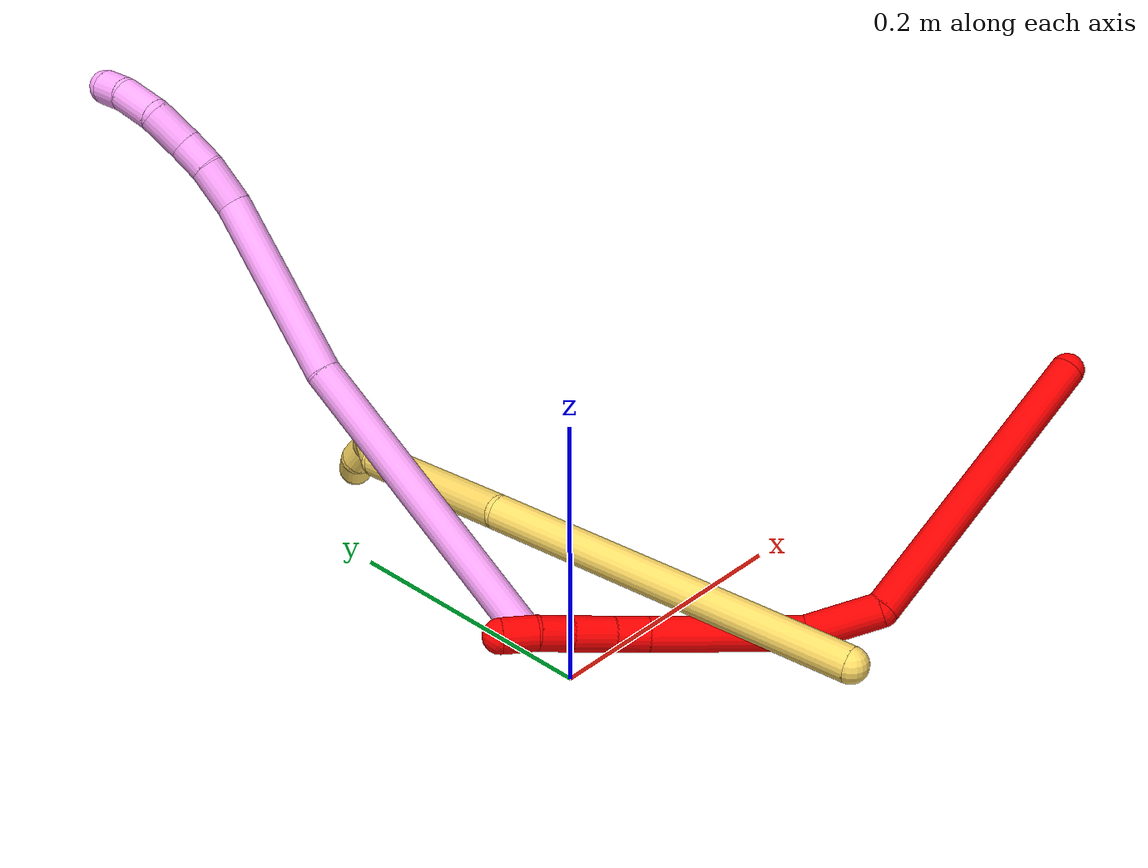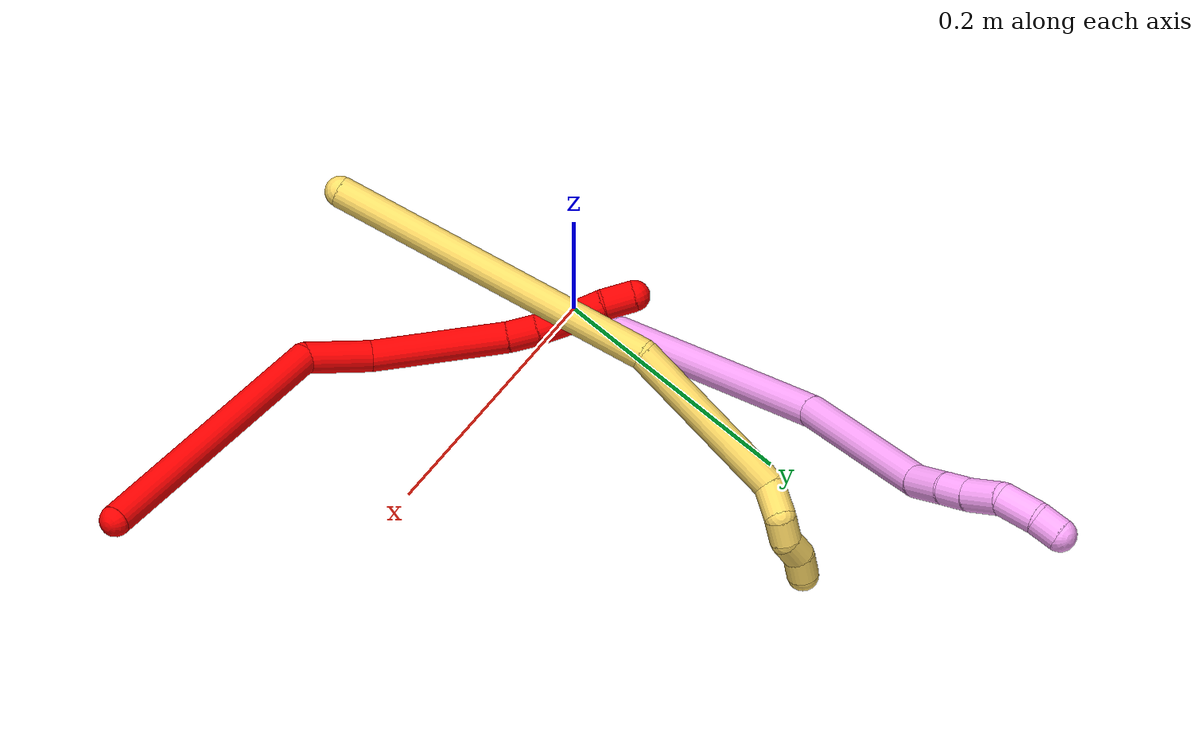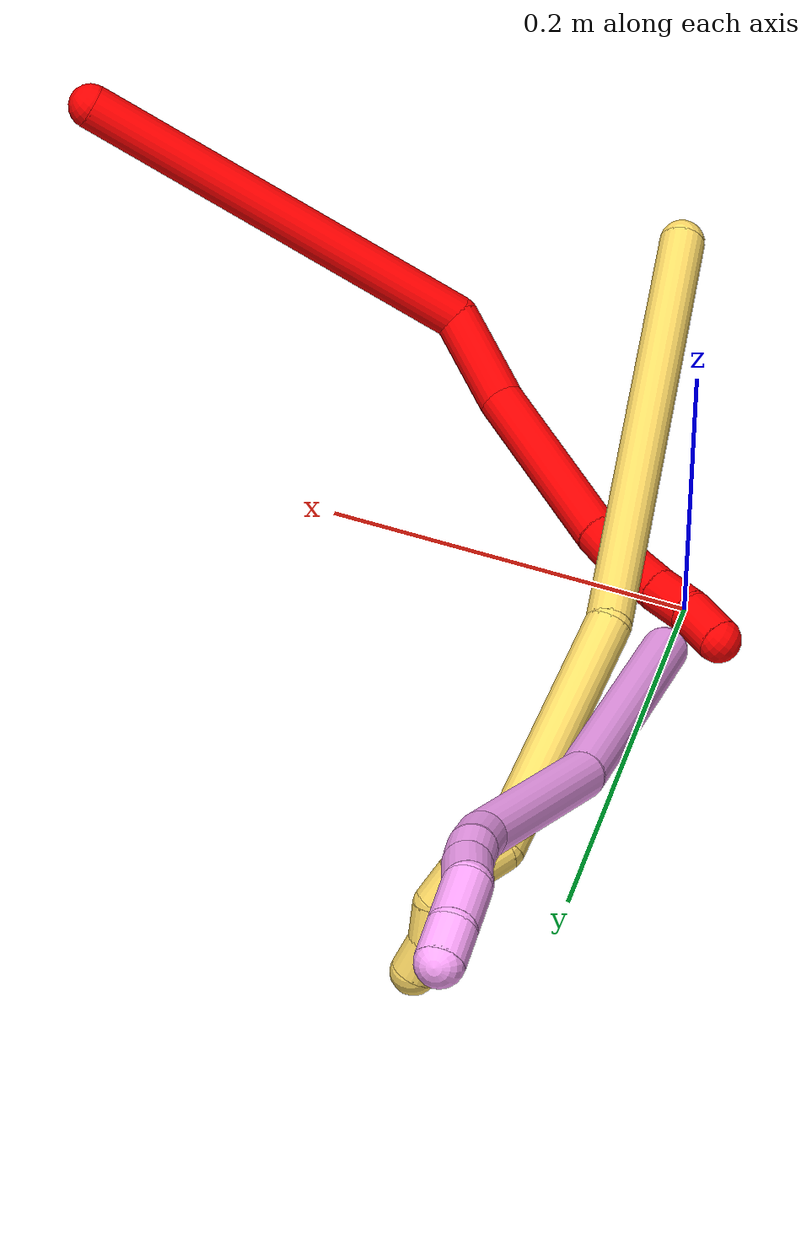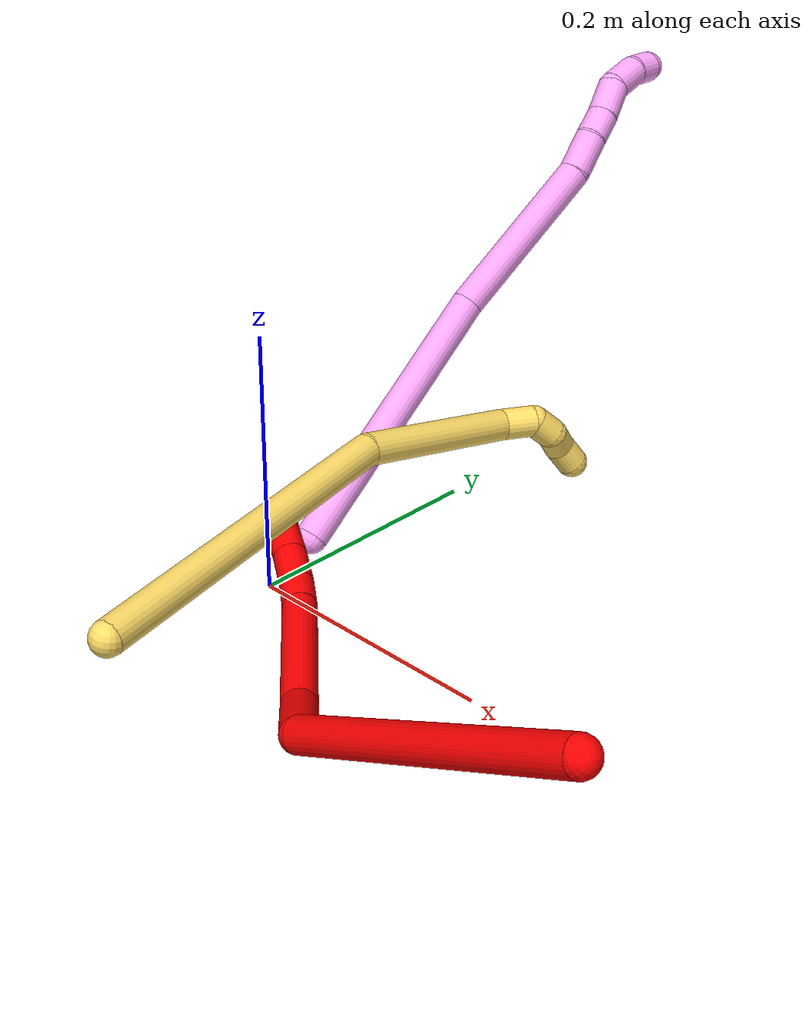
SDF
<sdf version="1.7">
 <world name="default">
  <model name="photoneo_s_sensor">
   <static>1</static>
   <pose>0 0 2 1.57079 1.57079 3.14159</pose>
   <link name="link">
    <inertial><mass>0.1</mass></inertial>
    <sensor name="sensor" type="depth">
     <update_rate>30</update_rate>
     <camera>
      <horizontal_fov>1.22</horizontal_fov>
      <image><width>1920</width><height>1200</height><format>B8G8R8</format></image>
      <clip><near>0.1</near><far>4</far></clip>
      <depth_camera><output>points</output></depth_camera>
     </camera>
     <plugin name="camera_plugin" filename="libgazebo_ros_depth_camera.so">
      <baseline>0.2</baseline>
      <alwaysOn>1</alwaysOn>
      <updateRate>0.0</updateRate>
      <cameraName>camera_ir</cameraName>
      <imageTopicName>/camera/color/image_raw</imageTopicName>
      <cameraInfoTopicName>/camera/color/camera_info</cameraInfoTopicName>
      <depthImageTopicName>/camera/depth/image_raw</depthImageTopicName>
      <depthImageCameraInfoTopicName>/camera/depth/camera_info</depthImageCameraInfoTopicName>
      <pointCloudTopicName>/camera/depth/points</pointCloudTopicName>
      <frameName>fr_optical</frameName>
      <pointCloudCutoff>0.1</pointCloudCutoff>
      <pointCloudCutoffMax>2.0</pointCloudCutoffMax>
      <distortionK1>0</distortionK1>
      <distortionK2>0</distortionK2>
      <distortionK3>0</distortionK3>
      <distortionT1>0</distortionT1>
      <distortionT2>0</distortionT2>
      <CxPrime>0</CxPrime>
      <Cx>0</Cx>
      <Cy>0</Cy>
      <focalLength>0</focalLength>
      <hackBaseline>0</hackBaseline>
     </plugin>
    </sensor>
   </link>
  </model>
  <model name="bin">
   <static>1</static>
   <link name="bottom">
    <collision name="collision-bottom">
     <pose>0 0 -0.01 0 -0 0</pose>
     <geometry><box><size>0.8 0.6 0.02</size></box></geometry>
     <surface>
      <friction><ode><mu>100</mu><mu2>100</mu2></ode></friction>
      <contact><collide_bitmask>65535</collide_bitmask></contact>
     </surface>
    </collision>
   </link>
   <link name="west_wall">
    <collision name="collision-west_wall">
     <pose>-0.41 0 0.1 0 -0 0</pose>
     <geometry><box><size>0.02 0.6 0.2</size></box></geometry>
     <surface>
      <friction><ode><mu>100</mu><mu2>100</mu2></ode></friction>
      <contact><collide_bitmask>65535</collide_bitmask></contact>
     </surface>
    </collision>
   </link>
   <link name="east_wall">
    <collision name="collision-east_wall">
     <pose>0.41 0 0.1 0 -0 0</pose>
     <geometry><box><size>0.02 0.6 0.2</size></box></geometry>
     <surface>
      <friction><ode><mu>100</mu><mu2>100</mu2></ode></friction>
      <contact><collide_bitmask>65535</collide_bitmask></contact>
     </surface>
    </collision>
   </link>
   <link name="south_wall">
    <collision name="collision-south_wall">
     <pose>0 -0.31 0.1 0 -0 0</pose>
     <geometry><box><size>0.8 0.02 0.2</size></box></geometry>
     <surface>
      <friction><ode><mu>100</mu><mu2>100</mu2></ode></friction>
      <contact><collide_bitmask>65535</collide_bitmask></contact>
     </surface>
    </collision>
   </link>
   <link name="north_wall">
    <collision name="collision-north_wall">
     <pose>0 0.31 0.1 0 -0 0</pose>
     <geometry><box><size>0.8 0.02 0.2</size></box></geometry>
     <surface>
      <friction><ode><mu>100</mu><mu2>100</mu2></ode></friction>
      <contact><collide_bitmask>65535</collide_bitmask></contact>
     </surface>
    </collision>
   </link>
  </model>
  <model name="2">
   <static>0</static>
   <link name="2">
    <collision name="collision-cylinder-e_1_1_4">
     <pose>-0.025797 -0.002825 -0.1136 3.11673 -0.223234 -2.92069</pose>
     <geometry><cylinder><radius>0.0125</radius><length>0.233054</length></cylinder></geometry>
     <surface>
      <friction><ode><mu>1.16</mu><mu2>1.16</mu2><slip1>0</slip1><slip2>0</slip2></ode></friction>
      <contact><ode><kp>1e+06</kp><kd>1</kd><max_vel>0</max_vel><min_depth>0.001</min_depth></ode></contact>
     </surface>
    </collision>
    <visual name="visual-cylinder-e_1_1_4">
     <pose>-0.025797 -0.002825 -0.1136 3.11673 -0.223234 -2.92069</pose>
     <geometry><cylinder><radius>0.0125</radius><length>0.233054</length></cylinder></geometry>
     <material><ambient>1 0 0 1</ambient></material>
    </visual>
    <collision name="collision-cylinder-e_2_4_5">
     <pose>-0.05864 0.011151 -0.247367 -2.44698 -0.262236 0.698746</pose>
     <geometry><cylinder><radius>0.0125</radius><length>0.054353</length></cylinder></geometry>
     <surface>
      <friction><ode><mu>1.16</mu><mu2>1.16</mu2><slip1>0</slip1><slip2>0</slip2></ode></friction>
      <contact><ode><kp>1e+06</kp><kd>1</kd><max_vel>0</max_vel><min_depth>0.001</min_depth></ode></contact>
     </surface>
    </collision>
    <visual name="visual-cylinder-e_2_4_5">
     <pose>-0.05864 0.011151 -0.247367 -2.44698 -0.262236 0.698746</pose>
     <geometry><cylinder><radius>0.0125</radius><length>0.054353</length></cylinder></geometry>
     <material><ambient>1 0 0 1</ambient></material>
    </visual>
    <collision name="collision-cylinder-e_3_5_6">
     <pose>-0.095772 0.061675 -0.297308 -2.2941 -0.58948 1.18478</pose>
     <geometry><cylinder><radius>0.0125</radius><length>0.10824</length></cylinder></geometry>
     <surface>
      <friction><ode><mu>1.16</mu><mu2>1.16</mu2><slip1>0</slip1><slip2>0</slip2></ode></friction>
      <contact><ode><kp>1e+06</kp><kd>1</kd><max_vel>0</max_vel><min_depth>0.001</min_depth></ode></contact>
     </surface>
    </collision>
    <visual name="visual-cylinder-e_3_5_6">
     <pose>-0.095772 0.061675 -0.297308 -2.2941 -0.58948 1.18478</pose>
     <geometry><cylinder><radius>0.0125</radius><length>0.10824</length></cylinder></geometry>
     <material><ambient>1 0 0 1</ambient></material>
    </visual>
    <collision name="collision-cylinder-e_4_6_7">
     <pose>-0.133694 0.10203 -0.333666 -2.35244 -0.697731 1.43597</pose>
     <geometry><cylinder><radius>0.0125</radius><length>0.024391</length></cylinder></geometry>
     <surface>
      <friction><ode><mu>1.16</mu><mu2>1.16</mu2><slip1>0</slip1><slip2>0</slip2></ode></friction>
      <contact><ode><kp>1e+06</kp><kd>1</kd><max_vel>0</max_vel><min_depth>0.001</min_depth></ode></contact>
     </surface>
    </collision>
    <visual name="visual-cylinder-e_4_6_7">
     <pose>-0.133694 0.10203 -0.333666 -2.35244 -0.697731 1.43597</pose>
     <geometry><cylinder><radius>0.0125</radius><length>0.024391</length></cylinder></geometry>
     <material><ambient>1 0 0 1</ambient></material>
    </visual>
    <collision name="collision-cylinder-e_5_7_8">
     <pose>-0.15235 0.115889 -0.348442 -2.41887 -0.78063 1.65554</pose>
     <geometry><cylinder><radius>0.0125</radius><length>0.030751</length></cylinder></geometry>
     <surface>
      <friction><ode><mu>1.16</mu><mu2>1.16</mu2><slip1>0</slip1><slip2>0</slip2></ode></friction>
      <contact><ode><kp>1e+06</kp><kd>1</kd><max_vel>0</max_vel><min_depth>0.001</min_depth></ode></contact>
     </surface>
    </collision>
    <visual name="visual-cylinder-e_5_7_8">
     <pose>-0.15235 0.115889 -0.348442 -2.41887 -0.78063 1.65554</pose>
     <geometry><cylinder><radius>0.0125</radius><length>0.030751</length></cylinder></geometry>
     <material><ambient>1 0 0 1</ambient></material>
    </visual>
    <collision name="collision-cylinder-e_6_8_9">
     <pose>-0.17227 0.128184 -0.362941 -2.46439 -0.844065 1.8114</pose>
     <geometry><cylinder><radius>0.0125</radius><length>0.024354</length></cylinder></geometry>
     <surface>
      <friction><ode><mu>1.16</mu><mu2>1.16</mu2><slip1>0</slip1><slip2>0</slip2></ode></friction>
      <contact><ode><kp>1e+06</kp><kd>1</kd><max_vel>0</max_vel><min_depth>0.001</min_depth></ode></contact>
     </surface>
    </collision>
    <visual name="visual-cylinder-e_6_8_9">
     <pose>-0.17227 0.128184 -0.362941 -2.46439 -0.844065 1.8114</pose>
     <geometry><cylinder><radius>0.0125</radius><length>0.024354</length></cylinder></geometry>
     <material><ambient>1 0 0 1</ambient></material>
    </visual>
    <collision name="collision-cylinder-e_7_9_2">
     <pose>-0.189029 0.139491 -0.37679 -2.45068 -0.663877 1.52766</pose>
     <geometry><cylinder><radius>0.0125</radius><length>0.024857</length></cylinder></geometry>
     <surface>
      <friction><ode><mu>1.16</mu><mu2>1.16</mu2><slip1>0</slip1><slip2>0</slip2></ode></friction>
      <contact><ode><kp>1e+06</kp><kd>1</kd><max_vel>0</max_vel><min_depth>0.001</min_depth></ode></contact>
     </surface>
    </collision>
    <visual name="visual-cylinder-e_7_9_2">
     <pose>-0.189029 0.139491 -0.37679 -2.45068 -0.663877 1.52766</pose>
     <geometry><cylinder><radius>0.0125</radius><length>0.024857</length></cylinder></geometry>
     <material><ambient>1 0 0 1</ambient></material>
    </visual>
    <collision name="collision-sphere-2">
     <pose>-0.196687 0.145729 -0.384334 0 -0 0</pose>
     <geometry><sphere><radius>0.0125</radius></sphere></geometry>
     <surface>
      <friction><ode><mu>1.16</mu><mu2>1.16</mu2><slip1>0</slip1><slip2>0</slip2></ode></friction>
      <contact><ode><kp>1e+06</kp><kd>1</kd><max_vel>0</max_vel><min_depth>0.001</min_depth></ode></contact>
     </surface>
    </collision>
    <visual name="visual-sphere-2">
     <pose>-0.196687 0.145729 -0.384334 0 -0 0</pose>
     <geometry><sphere><radius>0.0125</radius></sphere></geometry>
     <material><ambient>1 0 0 1</ambient></material>
    </visual>
    <collision name="collision-sphere-9">
     <pose>-0.181371 0.133253 -0.369246 0 -0 0</pose>
     <geometry><sphere><radius>0.0125</radius></sphere></geometry>
     <surface>
      <friction><ode><mu>1.16</mu><mu2>1.16</mu2><slip1>0</slip1><slip2>0</slip2></ode></friction>
      <contact><ode><kp>1e+06</kp><kd>1</kd><max_vel>0</max_vel><min_depth>0.001</min_depth></ode></contact>
     </surface>
    </collision>
    <visual name="visual-sphere-9">
     <pose>-0.181371 0.133253 -0.369246 0 -0 0</pose>
     <geometry><sphere><radius>0.0125</radius></sphere></geometry>
     <material><ambient>1 0 0 1</ambient></material>
    </visual>
    <collision name="collision-sphere-4">
     <pose>-0.051594 -0.005649 -0.227201 0 -0 0</pose>
     <geometry><sphere><radius>0.0125</radius></sphere></geometry>
     <surface>
      <friction><ode><mu>1.16</mu><mu2>1.16</mu2><slip1>0</slip1><slip2>0</slip2></ode></friction>
      <contact><ode><kp>1e+06</kp><kd>1</kd><max_vel>0</max_vel><min_depth>0.001</min_depth></ode></contact>
     </surface>
    </collision>
    <visual name="visual-sphere-4">
     <pose>-0.051594 -0.005649 -0.227201 0 -0 0</pose>
     <geometry><sphere><radius>0.0125</radius></sphere></geometry>
     <material><ambient>1 0 0 1</ambient></material>
    </visual>
    <collision name="collision-sphere-1">
     <geometry><sphere><radius>0.0125</radius></sphere></geometry>
     <surface>
      <friction><ode><mu>1.16</mu><mu2>1.16</mu2><slip1>0</slip1><slip2>0</slip2></ode></friction>
      <contact><ode><kp>1e+06</kp><kd>1</kd><max_vel>0</max_vel><min_depth>0.001</min_depth></ode></contact>
     </surface>
    </collision>
    <visual name="visual-sphere-1">
     <geometry><sphere><radius>0.0125</radius></sphere></geometry>
     <material><ambient>1 0 0 1</ambient></material>
    </visual>
    <collision name="collision-sphere-8">
     <pose>-0.16317 0.123114 -0.356635 0 -0 0</pose>
     <geometry><sphere><radius>0.0125</radius></sphere></geometry>
     <surface>
      <friction><ode><mu>1.16</mu><mu2>1.16</mu2><slip1>0</slip1><slip2>0</slip2></ode></friction>
      <contact><ode><kp>1e+06</kp><kd>1</kd><max_vel>0</max_vel><min_depth>0.001</min_depth></ode></contact>
     </surface>
    </collision>
    <visual name="visual-sphere-8">
     <pose>-0.16317 0.123114 -0.356635 0 -0 0</pose>
     <geometry><sphere><radius>0.0125</radius></sphere></geometry>
     <material><ambient>1 0 0 1</ambient></material>
    </visual>
    <collision name="collision-sphere-5">
     <pose>-0.065685 0.027952 -0.267533 0 -0 0</pose>
     <geometry><sphere><radius>0.0125</radius></sphere></geometry>
     <surface>
      <friction><ode><mu>1.16</mu><mu2>1.16</mu2><slip1>0</slip1><slip2>0</slip2></ode></friction>
      <contact><ode><kp>1e+06</kp><kd>1</kd><max_vel>0</max_vel><min_depth>0.001</min_depth></ode></contact>
     </surface>
    </collision>
    <visual name="visual-sphere-5">
     <pose>-0.065685 0.027952 -0.267533 0 -0 0</pose>
     <geometry><sphere><radius>0.0125</radius></sphere></geometry>
     <material><ambient>1 0 0 1</ambient></material>
    </visual>
    <collision name="collision-sphere-6">
     <pose>-0.125859 0.095397 -0.327083 0 -0 0</pose>
     <geometry><sphere><radius>0.0125</radius></sphere></geometry>
     <surface>
      <friction><ode><mu>1.16</mu><mu2>1.16</mu2><slip1>0</slip1><slip2>0</slip2></ode></friction>
      <contact><ode><kp>1e+06</kp><kd>1</kd><max_vel>0</max_vel><min_depth>0.001</min_depth></ode></contact>
     </surface>
    </collision>
    <visual name="visual-sphere-6">
     <pose>-0.125859 0.095397 -0.327083 0 -0 0</pose>
     <geometry><sphere><radius>0.0125</radius></sphere></geometry>
     <material><ambient>1 0 0 1</ambient></material>
    </visual>
    <collision name="collision-sphere-7">
     <pose>-0.141529 0.108663 -0.340249 0 -0 0</pose>
     <geometry><sphere><radius>0.0125</radius></sphere></geometry>
     <surface>
      <friction><ode><mu>1.16</mu><mu2>1.16</mu2><slip1>0</slip1><slip2>0</slip2></ode></friction>
      <contact><ode><kp>1e+06</kp><kd>1</kd><max_vel>0</max_vel><min_depth>0.001</min_depth></ode></contact>
     </surface>
    </collision>
    <visual name="visual-sphere-7">
     <pose>-0.141529 0.108663 -0.340249 0 -0 0</pose>
     <geometry><sphere><radius>0.0125</radius></sphere></geometry>
     <material><ambient>1 0 0 1</ambient></material>
    </visual>
    <inertial>
     <pose>-0.072811 0.03853 -0.218318 0 -0 0</pose>
     <mass>0.5</mass>
     <inertia>
      <ixx>-0.001108</ixx>
      <ixy>0</ixy>
      <ixz>0</ixz>
      <iyy>0.000937</iyy>
      <iyz>0</iyz>
      <izz>0.00022</izz>
     </inertia>
    </inertial>
   </link>
   <pose>0.384557 -0.127788 0.128634 -0.133982 0.898879 -0.167885</pose>
  </model>
  <model name="4">
   <static>0</static>
   <link name="4">
    <collision name="collision-cylinder-e_1_1_4">
     <pose>0.006843 0.007915 0.111724 -0.07073 0.061018 -0.002159</pose>
     <geometry><cylinder><radius>0.0125</radius><length>0.224425</length></cylinder></geometry>
     <surface>
      <friction><ode><mu>1.16</mu><mu2>1.16</mu2><slip1>0</slip1><slip2>0</slip2></ode></friction>
      <contact><ode><kp>1e+06</kp><kd>1</kd><max_vel>0</max_vel><min_depth>0.001</min_depth></ode></contact>
     </surface>
    </collision>
    <visual name="visual-cylinder-e_1_1_4">
     <pose>0.006843 0.007915 0.111724 -0.07073 0.061018 -0.002159</pose>
     <geometry><cylinder><radius>0.0125</radius><length>0.224425</length></cylinder></geometry>
     <material><ambient>1 0.65098 0.996078 1</ambient></material>
    </visual>
    <collision name="collision-cylinder-e_2_4_5">
     <pose>0.022151 0.009694 0.292078 0.089188 0.122245 0.005462</pose>
     <geometry><cylinder><radius>0.0125</radius><length>0.138846</length></cylinder></geometry>
     <surface>
      <friction><ode><mu>1.16</mu><mu2>1.16</mu2><slip1>0</slip1><slip2>0</slip2></ode></friction>
      <contact><ode><kp>1e+06</kp><kd>1</kd><max_vel>0</max_vel><min_depth>0.001</min_depth></ode></contact>
     </surface>
    </collision>
    <visual name="visual-cylinder-e_2_4_5">
     <pose>0.022151 0.009694 0.292078 0.089188 0.122245 0.005462</pose>
     <geometry><cylinder><radius>0.0125</radius><length>0.138846</length></cylinder></geometry>
     <material><ambient>1 0.65098 0.996078 1</ambient></material>
    </visual>
    <collision name="collision-cylinder-e_3_5_6">
     <pose>0.029287 0.003927 0.377102 -0.022587 -0.080894 0.000914</pose>
     <geometry><cylinder><radius>0.0125</radius><length>0.032902</length></cylinder></geometry>
     <surface>
      <friction><ode><mu>1.16</mu><mu2>1.16</mu2><slip1>0</slip1><slip2>0</slip2></ode></friction>
      <contact><ode><kp>1e+06</kp><kd>1</kd><max_vel>0</max_vel><min_depth>0.001</min_depth></ode></contact>
     </surface>
    </collision>
    <visual name="visual-cylinder-e_3_5_6">
     <pose>0.029287 0.003927 0.377102 -0.022587 -0.080894 0.000914</pose>
     <geometry><cylinder><radius>0.0125</radius><length>0.032902</length></cylinder></geometry>
     <material><ambient>1 0.65098 0.996078 1</ambient></material>
    </visual>
    <collision name="collision-cylinder-e_4_6_7">
     <pose>0.027873 0.006165 0.404778 -0.164087 -0.007401 0.000609</pose>
     <geometry><cylinder><radius>0.0125</radius><length>0.022875</length></cylinder></geometry>
     <surface>
      <friction><ode><mu>1.16</mu><mu2>1.16</mu2><slip1>0</slip1><slip2>0</slip2></ode></friction>
      <contact><ode><kp>1e+06</kp><kd>1</kd><max_vel>0</max_vel><min_depth>0.001</min_depth></ode></contact>
     </surface>
    </collision>
    <visual name="visual-cylinder-e_4_6_7">
     <pose>0.027873 0.006165 0.404778 -0.164087 -0.007401 0.000609</pose>
     <geometry><cylinder><radius>0.0125</radius><length>0.022875</length></cylinder></geometry>
     <material><ambient>1 0.65098 0.996078 1</ambient></material>
    </visual>
    <collision name="collision-cylinder-e_5_7_8">
     <pose>0.026167 0.011179 0.430801 -0.21029 -0.107192 0.011323</pose>
     <geometry><cylinder><radius>0.0125</radius><length>0.030316</length></cylinder></geometry>
     <surface>
      <friction><ode><mu>1.16</mu><mu2>1.16</mu2><slip1>0</slip1><slip2>0</slip2></ode></friction>
      <contact><ode><kp>1e+06</kp><kd>1</kd><max_vel>0</max_vel><min_depth>0.001</min_depth></ode></contact>
     </surface>
    </collision>
    <visual name="visual-cylinder-e_5_7_8">
     <pose>0.026167 0.011179 0.430801 -0.21029 -0.107192 0.011323</pose>
     <geometry><cylinder><radius>0.0125</radius><length>0.030316</length></cylinder></geometry>
     <material><ambient>1 0.65098 0.996078 1</ambient></material>
    </visual>
    <collision name="collision-cylinder-e_6_8_9">
     <pose>0.029478 0.019215 0.458999 -0.348471 0.331747 -0.058919</pose>
     <geometry><cylinder><radius>0.0125</radius><length>0.030292</length></cylinder></geometry>
     <surface>
      <friction><ode><mu>1.16</mu><mu2>1.16</mu2><slip1>0</slip1><slip2>0</slip2></ode></friction>
      <contact><ode><kp>1e+06</kp><kd>1</kd><max_vel>0</max_vel><min_depth>0.001</min_depth></ode></contact>
     </surface>
    </collision>
    <visual name="visual-cylinder-e_6_8_9">
     <pose>0.029478 0.019215 0.458999 -0.348471 0.331747 -0.058919</pose>
     <geometry><cylinder><radius>0.0125</radius><length>0.030292</length></cylinder></geometry>
     <material><ambient>1 0.65098 0.996078 1</ambient></material>
    </visual>
    <collision name="collision-cylinder-e_7_9_2">
     <pose>0.039805 0.028361 0.47996 -0.516067 0.558879 -0.151172</pose>
     <geometry><cylinder><radius>0.0125</radius><length>0.020345</length></cylinder></geometry>
     <surface>
      <friction><ode><mu>1.16</mu><mu2>1.16</mu2><slip1>0</slip1><slip2>0</slip2></ode></friction>
      <contact><ode><kp>1e+06</kp><kd>1</kd><max_vel>0</max_vel><min_depth>0.001</min_depth></ode></contact>
     </surface>
    </collision>
    <visual name="visual-cylinder-e_7_9_2">
     <pose>0.039805 0.028361 0.47996 -0.516067 0.558879 -0.151172</pose>
     <geometry><cylinder><radius>0.0125</radius><length>0.020345</length></cylinder></geometry>
     <material><ambient>1 0.65098 0.996078 1</ambient></material>
    </visual>
    <collision name="collision-sphere-2">
     <pose>0.045199 0.032617 0.487462 0 -0 0</pose>
     <geometry><sphere><radius>0.0125</radius></sphere></geometry>
     <surface>
      <friction><ode><mu>1.16</mu><mu2>1.16</mu2><slip1>0</slip1><slip2>0</slip2></ode></friction>
      <contact><ode><kp>1e+06</kp><kd>1</kd><max_vel>0</max_vel><min_depth>0.001</min_depth></ode></contact>
     </surface>
    </collision>
    <visual name="visual-sphere-2">
     <pose>0.045199 0.032617 0.487462 0 -0 0</pose>
     <geometry><sphere><radius>0.0125</radius></sphere></geometry>
     <material><ambient>1 0.65098 0.996078 1</ambient></material>
    </visual>
    <collision name="collision-sphere-9">
     <pose>0.034411 0.024105 0.472459 0 -0 0</pose>
     <geometry><sphere><radius>0.0125</radius></sphere></geometry>
     <surface>
      <friction><ode><mu>1.16</mu><mu2>1.16</mu2><slip1>0</slip1><slip2>0</slip2></ode></friction>
      <contact><ode><kp>1e+06</kp><kd>1</kd><max_vel>0</max_vel><min_depth>0.001</min_depth></ode></contact>
     </surface>
    </collision>
    <visual name="visual-sphere-9">
     <pose>0.034411 0.024105 0.472459 0 -0 0</pose>
     <geometry><sphere><radius>0.0125</radius></sphere></geometry>
     <material><ambient>1 0.65098 0.996078 1</ambient></material>
    </visual>
    <collision name="collision-sphere-4">
     <pose>0.013685 0.015831 0.223447 0 -0 0</pose>
     <geometry><sphere><radius>0.0125</radius></sphere></geometry>
     <surface>
      <friction><ode><mu>1.16</mu><mu2>1.16</mu2><slip1>0</slip1><slip2>0</slip2></ode></friction>
      <contact><ode><kp>1e+06</kp><kd>1</kd><max_vel>0</max_vel><min_depth>0.001</min_depth></ode></contact>
     </surface>
    </collision>
    <visual name="visual-sphere-4">
     <pose>0.013685 0.015831 0.223447 0 -0 0</pose>
     <geometry><sphere><radius>0.0125</radius></sphere></geometry>
     <material><ambient>1 0.65098 0.996078 1</ambient></material>
    </visual>
    <collision name="collision-sphere-1">
     <geometry><sphere><radius>0.0125</radius></sphere></geometry>
     <surface>
      <friction><ode><mu>1.16</mu><mu2>1.16</mu2><slip1>0</slip1><slip2>0</slip2></ode></friction>
      <contact><ode><kp>1e+06</kp><kd>1</kd><max_vel>0</max_vel><min_depth>0.001</min_depth></ode></contact>
     </surface>
    </collision>
    <visual name="visual-sphere-1">
     <geometry><sphere><radius>0.0125</radius></sphere></geometry>
     <material><ambient>1 0.65098 0.996078 1</ambient></material>
    </visual>
    <collision name="collision-sphere-8">
     <pose>0.024545 0.014325 0.44554 0 -0 0</pose>
     <geometry><sphere><radius>0.0125</radius></sphere></geometry>
     <surface>
      <friction><ode><mu>1.16</mu><mu2>1.16</mu2><slip1>0</slip1><slip2>0</slip2></ode></friction>
      <contact><ode><kp>1e+06</kp><kd>1</kd><max_vel>0</max_vel><min_depth>0.001</min_depth></ode></contact>
     </surface>
    </collision>
    <visual name="visual-sphere-8">
     <pose>0.024545 0.014325 0.44554 0 -0 0</pose>
     <geometry><sphere><radius>0.0125</radius></sphere></geometry>
     <material><ambient>1 0.65098 0.996078 1</ambient></material>
    </visual>
    <collision name="collision-sphere-5">
     <pose>0.030616 0.003556 0.360709 0 -0 0</pose>
     <geometry><sphere><radius>0.0125</radius></sphere></geometry>
     <surface>
      <friction><ode><mu>1.16</mu><mu2>1.16</mu2><slip1>0</slip1><slip2>0</slip2></ode></friction>
      <contact><ode><kp>1e+06</kp><kd>1</kd><max_vel>0</max_vel><min_depth>0.001</min_depth></ode></contact>
     </surface>
    </collision>
    <visual name="visual-sphere-5">
     <pose>0.030616 0.003556 0.360709 0 -0 0</pose>
     <geometry><sphere><radius>0.0125</radius></sphere></geometry>
     <material><ambient>1 0.65098 0.996078 1</ambient></material>
    </visual>
    <collision name="collision-sphere-6">
     <pose>0.027958 0.004297 0.393495 0 -0 0</pose>
     <geometry><sphere><radius>0.0125</radius></sphere></geometry>
     <surface>
      <friction><ode><mu>1.16</mu><mu2>1.16</mu2><slip1>0</slip1><slip2>0</slip2></ode></friction>
      <contact><ode><kp>1e+06</kp><kd>1</kd><max_vel>0</max_vel><min_depth>0.001</min_depth></ode></contact>
     </surface>
    </collision>
    <visual name="visual-sphere-6">
     <pose>0.027958 0.004297 0.393495 0 -0 0</pose>
     <geometry><sphere><radius>0.0125</radius></sphere></geometry>
     <material><ambient>1 0.65098 0.996078 1</ambient></material>
    </visual>
    <collision name="collision-sphere-7">
     <pose>0.027788 0.008033 0.416062 0 -0 0</pose>
     <geometry><sphere><radius>0.0125</radius></sphere></geometry>
     <surface>
      <friction><ode><mu>1.16</mu><mu2>1.16</mu2><slip1>0</slip1><slip2>0</slip2></ode></friction>
      <contact><ode><kp>1e+06</kp><kd>1</kd><max_vel>0</max_vel><min_depth>0.001</min_depth></ode></contact>
     </surface>
    </collision>
    <visual name="visual-sphere-7">
     <pose>0.027788 0.008033 0.416062 0 -0 0</pose>
     <geometry><sphere><radius>0.0125</radius></sphere></geometry>
     <material><ambient>1 0.65098 0.996078 1</ambient></material>
    </visual>
    <inertial>
     <pose>0.017417 0.009781 0.248045 0 -0 0</pose>
     <mass>0.5</mass>
     <inertia>
      <ixx>0.001192</ixx>
      <ixy>0</ixy>
      <ixz>0</ixz>
      <iyy>0.001192</iyy>
      <iyz>0</iyz>
      <izz>-9.9e-05</izz>
     </inertia>
    </inertial>
   </link>
   <pose>-0.002311 0.044541 0.021962 -0.606549 0.628586 0.734497</pose>
  </model>
  <model name="5">
   <static>0</static>
   <link name="5">
    <collision name="collision-cylinder-e_1_1_4">
     <pose>-0.013938 0.133941 0.022238 -1.40627 -0.102296 0.086734</pose>
     <geometry><cylinder><radius>0.0125</radius><length>0.272976</length></cylinder></geometry>
     <surface>
      <friction><ode><mu>1.16</mu><mu2>1.16</mu2><slip1>0</slip1><slip2>0</slip2></ode></friction>
      <contact><ode><kp>1e+06</kp><kd>1</kd><max_vel>0</max_vel><min_depth>0.001</min_depth></ode></contact>
     </surface>
    </collision>
    <visual name="visual-cylinder-e_1_1_4">
     <pose>-0.013938 0.133941 0.022238 -1.40627 -0.102296 0.086734</pose>
     <geometry><cylinder><radius>0.0125</radius><length>0.272976</length></cylinder></geometry>
     <material><ambient>1 0.858824 0.4 1</ambient></material>
    </visual>
    <collision name="collision-cylinder-e_2_4_5">
     <pose>-0.015565 0.336321 0.042293 -1.60268 0.177883 -0.183615</pose>
     <geometry><cylinder><radius>0.0125</radius><length>0.139143</length></cylinder></geometry>
     <surface>
      <friction><ode><mu>1.16</mu><mu2>1.16</mu2><slip1>0</slip1><slip2>0</slip2></ode></friction>
      <contact><ode><kp>1e+06</kp><kd>1</kd><max_vel>0</max_vel><min_depth>0.001</min_depth></ode></contact>
     </surface>
    </collision>
    <visual name="visual-cylinder-e_2_4_5">
     <pose>-0.015565 0.336321 0.042293 -1.60268 0.177883 -0.183615</pose>
     <geometry><cylinder><radius>0.0125</radius><length>0.139143</length></cylinder></geometry>
     <material><ambient>1 0.858824 0.4 1</ambient></material>
    </visual>
    <collision name="collision-cylinder-e_3_5_6">
     <pose>0.00487 0.415451 0.042634 -1.33903 0.636822 -0.5104</pose>
     <geometry><cylinder><radius>0.0125</radius><length>0.027326</length></cylinder></geometry>
     <surface>
      <friction><ode><mu>1.16</mu><mu2>1.16</mu2><slip1>0</slip1><slip2>0</slip2></ode></friction>
      <contact><ode><kp>1e+06</kp><kd>1</kd><max_vel>0</max_vel><min_depth>0.001</min_depth></ode></contact>
     </surface>
    </collision>
    <visual name="visual-cylinder-e_3_5_6">
     <pose>0.00487 0.415451 0.042634 -1.33903 0.636822 -0.5104</pose>
     <geometry><cylinder><radius>0.0125</radius><length>0.027326</length></cylinder></geometry>
     <material><ambient>1 0.858824 0.4 1</ambient></material>
    </visual>
    <collision name="collision-cylinder-e_4_6_7">
     <pose>0.018187 0.432986 0.039879 -2.22776 0.541111 -1.02733</pose>
     <geometry><cylinder><radius>0.0125</radius><length>0.020164</length></cylinder></geometry>
     <surface>
      <friction><ode><mu>1.16</mu><mu2>1.16</mu2><slip1>0</slip1><slip2>0</slip2></ode></friction>
      <contact><ode><kp>1e+06</kp><kd>1</kd><max_vel>0</max_vel><min_depth>0.001</min_depth></ode></contact>
     </surface>
    </collision>
    <visual name="visual-cylinder-e_4_6_7">
     <pose>0.018187 0.432986 0.039879 -2.22776 0.541111 -1.02733</pose>
     <geometry><cylinder><radius>0.0125</radius><length>0.020164</length></cylinder></geometry>
     <material><ambient>1 0.858824 0.4 1</ambient></material>
    </visual>
    <collision name="collision-cylinder-e_5_7_8">
     <pose>0.023966 0.446889 0.027327 -2.37115 0.057719 -0.142149</pose>
     <geometry><cylinder><radius>0.0125</radius><length>0.020309</length></cylinder></geometry>
     <surface>
      <friction><ode><mu>1.16</mu><mu2>1.16</mu2><slip1>0</slip1><slip2>0</slip2></ode></friction>
      <contact><ode><kp>1e+06</kp><kd>1</kd><max_vel>0</max_vel><min_depth>0.001</min_depth></ode></contact>
     </surface>
    </collision>
    <visual name="visual-cylinder-e_5_7_8">
     <pose>0.023966 0.446889 0.027327 -2.37115 0.057719 -0.142149</pose>
     <geometry><cylinder><radius>0.0125</radius><length>0.020309</length></cylinder></geometry>
     <material><ambient>1 0.858824 0.4 1</ambient></material>
    </visual>
    <collision name="collision-cylinder-e_6_8_2">
     <pose>0.028905 0.459708 0.013073 -2.45167 0.448427 -1.13102</pose>
     <geometry><cylinder><radius>0.0125</radius><length>0.020081</length></cylinder></geometry>
     <surface>
      <friction><ode><mu>1.16</mu><mu2>1.16</mu2><slip1>0</slip1><slip2>0</slip2></ode></friction>
      <contact><ode><kp>1e+06</kp><kd>1</kd><max_vel>0</max_vel><min_depth>0.001</min_depth></ode></contact>
     </surface>
    </collision>
    <visual name="visual-cylinder-e_6_8_2">
     <pose>0.028905 0.459708 0.013073 -2.45167 0.448427 -1.13102</pose>
     <geometry><cylinder><radius>0.0125</radius><length>0.020081</length></cylinder></geometry>
     <material><ambient>1 0.858824 0.4 1</ambient></material>
    </visual>
    <collision name="collision-sphere-2">
     <pose>0.033258 0.465467 0.006094 0 -0 0</pose>
     <geometry><sphere><radius>0.0125</radius></sphere></geometry>
     <surface>
      <friction><ode><mu>1.16</mu><mu2>1.16</mu2><slip1>0</slip1><slip2>0</slip2></ode></friction>
      <contact><ode><kp>1e+06</kp><kd>1</kd><max_vel>0</max_vel><min_depth>0.001</min_depth></ode></contact>
     </surface>
    </collision>
    <visual name="visual-sphere-2">
     <pose>0.033258 0.465467 0.006094 0 -0 0</pose>
     <geometry><sphere><radius>0.0125</radius></sphere></geometry>
     <material><ambient>1 0.858824 0.4 1</ambient></material>
    </visual>
    <collision name="collision-sphere-4">
     <pose>-0.027876 0.267882 0.044476 0 -0 0</pose>
     <geometry><sphere><radius>0.0125</radius></sphere></geometry>
     <surface>
      <friction><ode><mu>1.16</mu><mu2>1.16</mu2><slip1>0</slip1><slip2>0</slip2></ode></friction>
      <contact><ode><kp>1e+06</kp><kd>1</kd><max_vel>0</max_vel><min_depth>0.001</min_depth></ode></contact>
     </surface>
    </collision>
    <visual name="visual-sphere-4">
     <pose>-0.027876 0.267882 0.044476 0 -0 0</pose>
     <geometry><sphere><radius>0.0125</radius></sphere></geometry>
     <material><ambient>1 0.858824 0.4 1</ambient></material>
    </visual>
    <collision name="collision-sphere-1">
     <geometry><sphere><radius>0.0125</radius></sphere></geometry>
     <surface>
      <friction><ode><mu>1.16</mu><mu2>1.16</mu2><slip1>0</slip1><slip2>0</slip2></ode></friction>
      <contact><ode><kp>1e+06</kp><kd>1</kd><max_vel>0</max_vel><min_depth>0.001</min_depth></ode></contact>
     </surface>
    </collision>
    <visual name="visual-sphere-1">
     <geometry><sphere><radius>0.0125</radius></sphere></geometry>
     <material><ambient>1 0.858824 0.4 1</ambient></material>
    </visual>
    <collision name="collision-sphere-8">
     <pose>0.024552 0.453949 0.020052 0 -0 0</pose>
     <geometry><sphere><radius>0.0125</radius></sphere></geometry>
     <surface>
      <friction><ode><mu>1.16</mu><mu2>1.16</mu2><slip1>0</slip1><slip2>0</slip2></ode></friction>
      <contact><ode><kp>1e+06</kp><kd>1</kd><max_vel>0</max_vel><min_depth>0.001</min_depth></ode></contact>
     </surface>
    </collision>
    <visual name="visual-sphere-8">
     <pose>0.024552 0.453949 0.020052 0 -0 0</pose>
     <geometry><sphere><radius>0.0125</radius></sphere></geometry>
     <material><ambient>1 0.858824 0.4 1</ambient></material>
    </visual>
    <collision name="collision-sphere-5">
     <pose>-0.003255 0.40476 0.04011 0 -0 0</pose>
     <geometry><sphere><radius>0.0125</radius></sphere></geometry>
     <surface>
      <friction><ode><mu>1.16</mu><mu2>1.16</mu2><slip1>0</slip1><slip2>0</slip2></ode></friction>
      <contact><ode><kp>1e+06</kp><kd>1</kd><max_vel>0</max_vel><min_depth>0.001</min_depth></ode></contact>
     </surface>
    </collision>
    <visual name="visual-sphere-5">
     <pose>-0.003255 0.40476 0.04011 0 -0 0</pose>
     <geometry><sphere><radius>0.0125</radius></sphere></geometry>
     <material><ambient>1 0.858824 0.4 1</ambient></material>
    </visual>
    <collision name="collision-sphere-6">
     <pose>0.012994 0.426143 0.045157 0 -0 0</pose>
     <geometry><sphere><radius>0.0125</radius></sphere></geometry>
     <surface>
      <friction><ode><mu>1.16</mu><mu2>1.16</mu2><slip1>0</slip1><slip2>0</slip2></ode></friction>
      <contact><ode><kp>1e+06</kp><kd>1</kd><max_vel>0</max_vel><min_depth>0.001</min_depth></ode></contact>
     </surface>
    </collision>
    <visual name="visual-sphere-6">
     <pose>0.012994 0.426143 0.045157 0 -0 0</pose>
     <geometry><sphere><radius>0.0125</radius></sphere></geometry>
     <material><ambient>1 0.858824 0.4 1</ambient></material>
    </visual>
    <collision name="collision-sphere-7">
     <pose>0.023381 0.439829 0.034601 0 -0 0</pose>
     <geometry><sphere><radius>0.0125</radius></sphere></geometry>
     <surface>
      <friction><ode><mu>1.16</mu><mu2>1.16</mu2><slip1>0</slip1><slip2>0</slip2></ode></friction>
      <contact><ode><kp>1e+06</kp><kd>1</kd><max_vel>0</max_vel><min_depth>0.001</min_depth></ode></contact>
     </surface>
    </collision>
    <visual name="visual-sphere-7">
     <pose>0.023381 0.439829 0.034601 0 -0 0</pose>
     <geometry><sphere><radius>0.0125</radius></sphere></geometry>
     <material><ambient>1 0.858824 0.4 1</ambient></material>
    </visual>
    <inertial>
     <pose>-0.008807 0.243501 0.029484 0 -0 0</pose>
     <mass>0.5</mass>
     <inertia>
      <ixx>0.002022</ixx>
      <ixy>0</ixy>
      <ixz>0</ixz>
      <iyy>0.000432</iyy>
      <iyz>0</iyz>
      <izz>-0.001774</izz>
     </inertia>
    </inertial>
   </link>
   <pose>0.062405 -0.184578 0.073989 -0.123352 0.115654 0.068174</pose>
  </model>
 </world>
</sdf>
